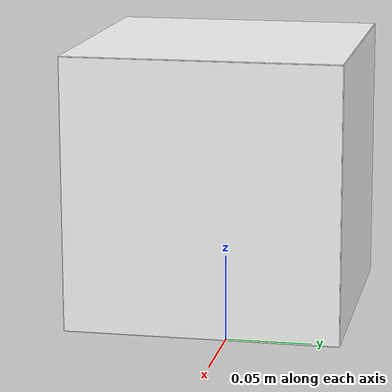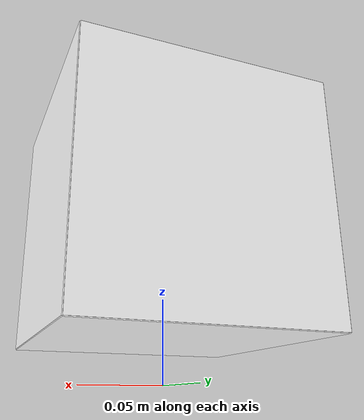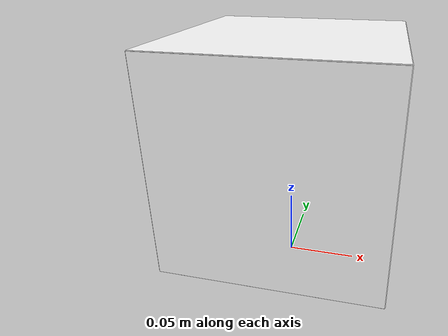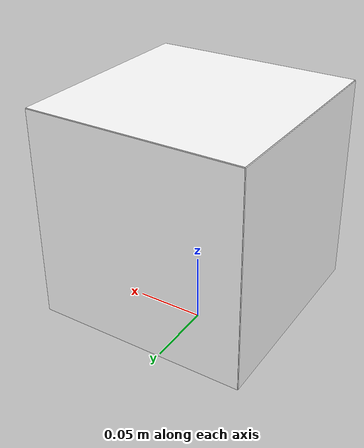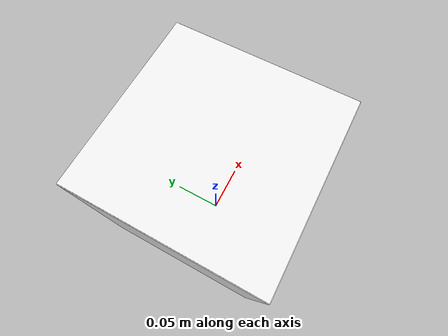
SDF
<?xml version="1.0"?>
<sdf version="1.8">
  <model name="cubo_aruco">
    <static>true</static>
    <link name="link">
      <pose>0 0 0.1 0 0 0</pose>

      <!-- Cara superior (+Z) -->
      <visual name="face_top">
        <pose>0 0 0.075 0 0 0</pose>
        <geometry><box><size>0.15 0.15 0.001</size></box></geometry>
        <material>
          <diffuse>1 1 1 1</diffuse>
          <pbr><metal><albedo_map>../marcador_aruco/materials/textures/aruco0.png</albedo_map></metal></pbr>
        </material>
      </visual>

      <!-- Cara inferior (-Z) -->
      <visual name="face_bottom">
        <pose>0 0 -0.075 0 0 0</pose>
        <geometry><box><size>0.15 0.15 0.001</size></box></geometry>
        <material>
          <diffuse>1 1 1 1</diffuse>
          <pbr><metal><albedo_map>../marcador_aruco/materials/textures/aruco1.png</albedo_map></metal></pbr>
        </material>
      </visual>

      <!-- Cara frontal (+Y) -->
      <visual name="face_front">
        <pose>0 0.075 0 -1.5708 0 0</pose>
        <geometry><box><size>0.15 0.15 0.001</size></box></geometry>
        <material>
          <diffuse>1 1 1 1</diffuse>
          <pbr><metal><albedo_map>../marcador_aruco/materials/textures/aruco1.png</albedo_map></metal></pbr>
        </material>
      </visual>

      <!-- Cara trasera (-Y) -->
      <visual name="face_back">
        <pose>0 -0.075 0 1.5708 0 0</pose>
        <geometry><box><size>0.15 0.15 0.001</size></box></geometry>
        <material>
          <diffuse>1 1 1 1</diffuse>
          <pbr><metal><albedo_map>../marcador_aruco/materials/textures/aruco1.png</albedo_map></metal></pbr>
        </material>
      </visual>

      <!-- Cara derecha (+X) -->
      <visual name="face_right">
        <pose>0.075 0 0 0 1.5708 0</pose>
        <geometry><box><size>0.15 0.15 0.001</size></box></geometry>
        <material>
          <diffuse>1 1 1 1</diffuse>
          <pbr><metal><albedo_map>../marcador_aruco/materials/textures/aruco1.png</albedo_map></metal></pbr>
        </material>
      </visual>

      <!-- Cara izquierda (-X) -->
      <visual name="face_left">
        <pose>-0.075 0 0 0 -1.5708 0</pose>
        <geometry><box><size>0.15 0.15 0.001</size></box></geometry>
        <material>
          <diffuse>1 1 1 1</diffuse>
          <pbr><metal><albedo_map>../marcador_aruco/materials/textures/aruco1.png</albedo_map></metal></pbr>
        </material>
      </visual>

      <collision name="collision">
        <geometry>
          <box>
            <size>0.15 0.15 0.15</size>
          </box>
        </geometry>
      </collision>
    </link>
  </model>
</sdf>
